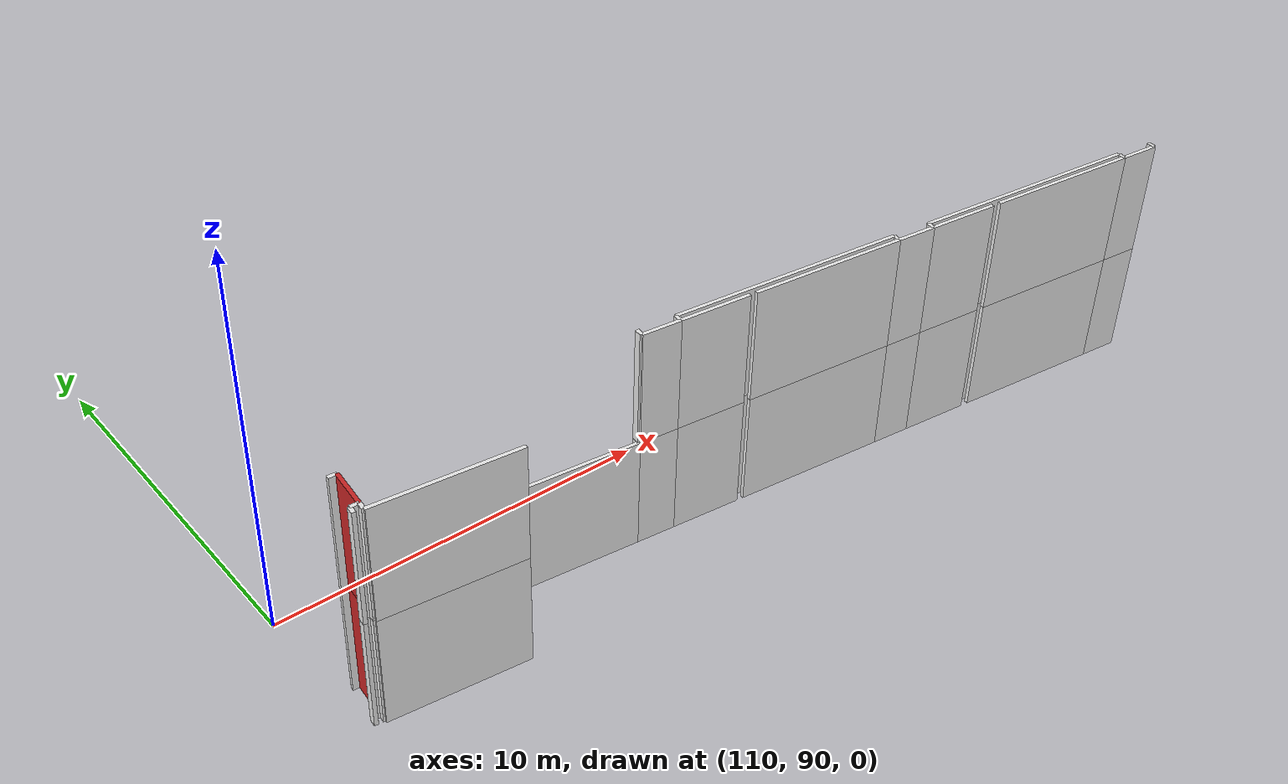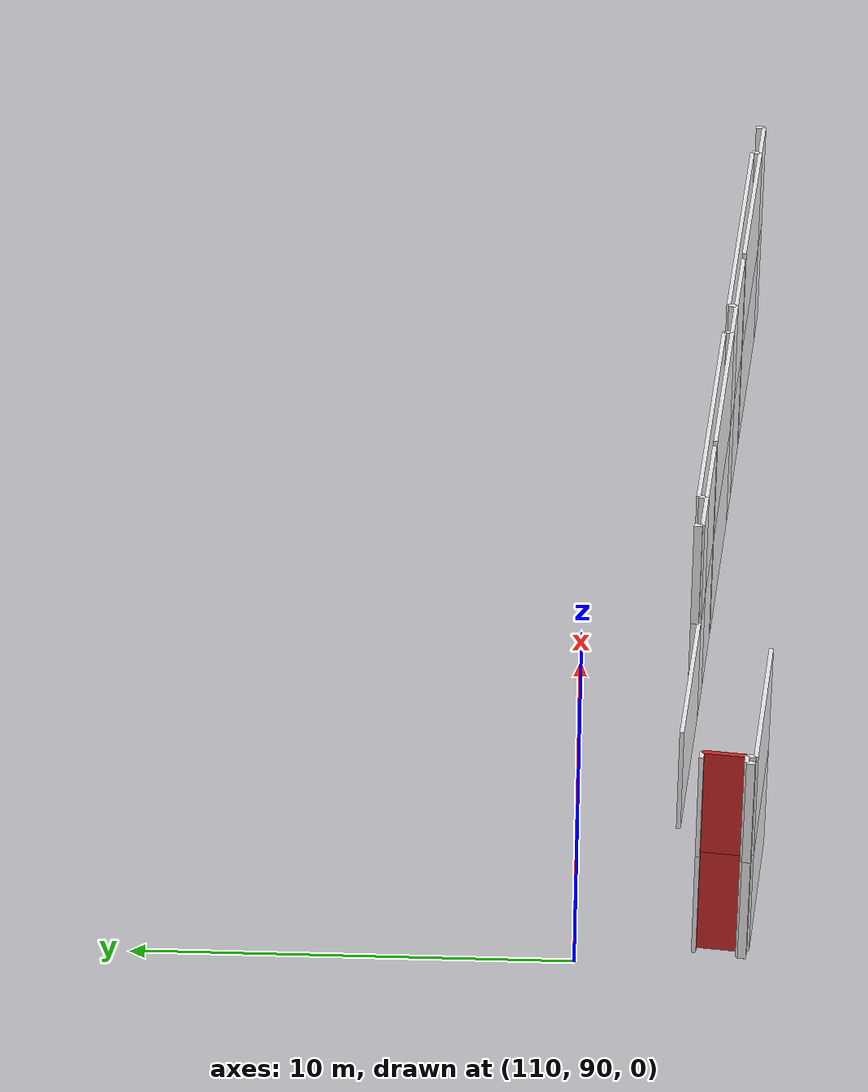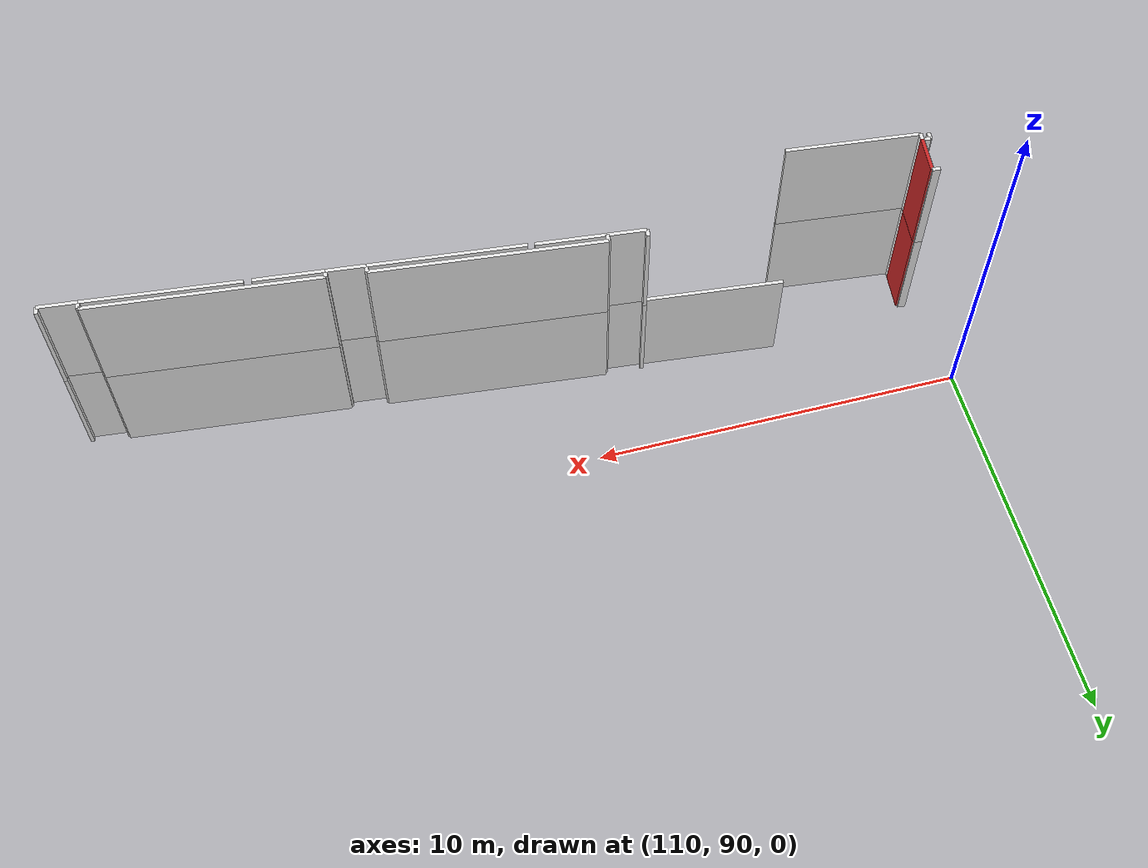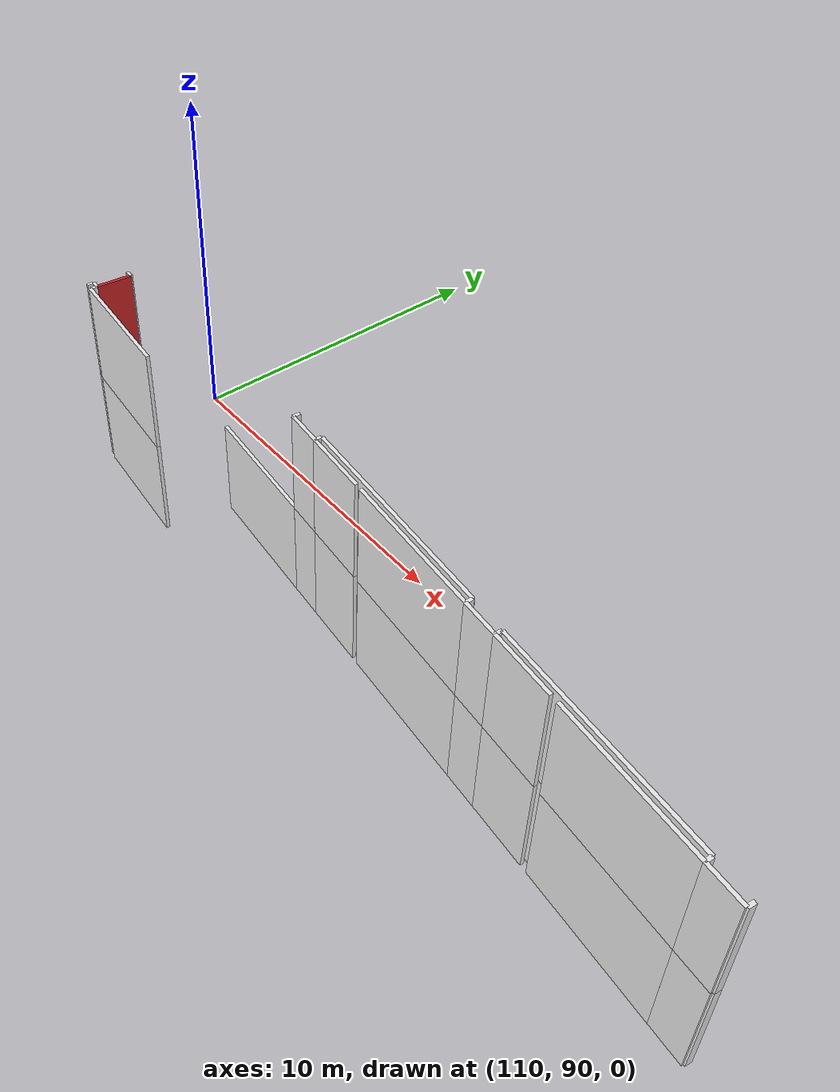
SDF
<sdf version="1.6">
 <world name="default">
  <model name="wall_110.6_86.8_1.5">
   <static>true</static>
   <pose>110.55999999999767 86.81499999994412 1.5 0 0 1.4701276746829237</pose>
   <link name="link">
    <visual name="visual">
     <geometry><box><size>0.9950376879485058 0.1 3</size></box></geometry>
     <material>
      <script><uri>file://media/materials/scripts/gazebo.material</uri><name>Gazebo/Red</name></script>
     </material>
    </visual>
    <collision name="collision"><geometry><box><size>0.9950376879485058 0.1 3</size></box></geometry></collision>
   </link>
  </model>
  <model name="wall_110.6_86.8_4.5">
   <static>true</static>
   <pose>110.55999999999767 86.81499999994412 4.5 0 0 1.4701276746829237</pose>
   <link name="link">
    <visual name="visual">
     <geometry><box><size>0.9950376879485058 0.1 3</size></box></geometry>
     <material>
      <script><uri>file://media/materials/scripts/gazebo.material</uri><name>Gazebo/Red</name></script>
     </material>
    </visual>
    <collision name="collision"><geometry><box><size>0.9950376879485058 0.1 3</size></box></geometry></collision>
   </link>
  </model>
  <model name="wall_132.6_85.8_1.5">
   <static>true</static>
   <pose>132.5800000000163 85.84000000008382 1.5 0 0 3.041924001006421</pose>
   <link name="link">
    <visual name="visual">
     <geometry><box><size>1.004987562121356 0.1 3</size></box></geometry>
     <material>
      <script><uri>file://media/materials/scripts/gazebo.material</uri><name>Gazebo/White</name></script>
     </material>
    </visual>
    <collision name="collision"><geometry><box><size>1.004987562121356 0.1 3</size></box></geometry></collision>
   </link>
  </model>
  <model name="wall_130.1_86.1_1.5">
   <static>true</static>
   <pose>130.0899999999965 86.09499999997206 1.5 0 0 3.03893967778239</pose>
   <link name="link">
    <visual name="visual">
     <geometry><box><size>4.001062358931114 0.1 3</size></box></geometry>
     <material>
      <script><uri>file://media/materials/scripts/gazebo.material</uri><name>Gazebo/White</name></script>
     </material>
    </visual>
    <collision name="collision"><geometry><box><size>4.001062358931114 0.1 3</size></box></geometry></collision>
   </link>
  </model>
  <model name="wall_112.3_85.9_1.5">
   <static>true</static>
   <pose>112.25500000000466 85.94999999995343 1.5 0 0 3.039961019922028</pose>
   <link name="link">
    <visual name="visual">
     <geometry><box><size>3.548309456643174 0.1 3</size></box></geometry>
     <material>
      <script><uri>file://media/materials/scripts/gazebo.material</uri><name>Gazebo/White</name></script>
     </material>
    </visual>
    <collision name="collision"><geometry><box><size>3.548309456643174 0.1 3</size></box></geometry></collision>
   </link>
  </model>
  <model name="wall_110.5_86.2_1.5">
   <static>true</static>
   <pose>110.5 86.2249999998603 1.5 0 0 1.4659193879370842</pose>
   <link name="link">
    <visual name="visual">
     <geometry><box><size>0.19104973169180559 0.1 3</size></box></geometry>
     <material>
      <script><uri>file://media/materials/scripts/gazebo.material</uri><name>Gazebo/White</name></script>
     </material>
    </visual>
    <collision name="collision"><geometry><box><size>0.19104973169180559 0.1 3</size></box></geometry></collision>
   </link>
  </model>
  <model name="wall_110.5_87.3_1.5">
   <static>true</static>
   <pose>110.50500000000466 87.32000000006519 1.5 0 0 -0.09495170644739931</pose>
   <link name="link">
    <visual name="visual">
     <geometry><box><size>0.21095023106197072 0.1 3</size></box></geometry>
     <material>
      <script><uri>file://media/materials/scripts/gazebo.material</uri><name>Gazebo/White</name></script>
     </material>
    </visual>
    <collision name="collision"><geometry><box><size>0.21095023106197072 0.1 3</size></box></geometry></collision>
   </link>
  </model>
  <model name="wall_110.4_86.3_1.5">
   <static>true</static>
   <pose>110.40499999999884 86.32999999984168 1.5 0 0 3.0466409471685547</pose>
   <link name="link">
    <visual name="visual">
     <geometry><box><size>0.21095023111991618 0.1 3</size></box></geometry>
     <material>
      <script><uri>file://media/materials/scripts/gazebo.material</uri><name>Gazebo/White</name></script>
     </material>
    </visual>
    <collision name="collision"><geometry><box><size>0.21095023111991618 0.1 3</size></box></geometry></collision>
   </link>
  </model>
  <model name="wall_110.3_86.2_1.5">
   <static>true</static>
   <pose>110.29000000000815 86.24499999987893 1.5 0 0 -1.6756732653497102</pose>
   <link name="link">
    <visual name="visual">
     <geometry><box><size>0.19104973168571213 0.1 3</size></box></geometry>
     <material>
      <script><uri>file://media/materials/scripts/gazebo.material</uri><name>Gazebo/White</name></script>
     </material>
    </visual>
    <collision name="collision"><geometry><box><size>0.19104973168571213 0.1 3</size></box></geometry></collision>
   </link>
  </model>
  <model name="wall_127.0_86.4_1.5">
   <static>true</static>
   <pose>127.00500000000466 86.40999999991618 1.5 0 0 3.041370903719256</pose>
   <link name="link">
    <visual name="visual">
     <geometry><box><size>1.7990275151296922 0.1 3</size></box></geometry>
     <material>
      <script><uri>file://media/materials/scripts/gazebo.material</uri><name>Gazebo/White</name></script>
     </material>
    </visual>
    <collision name="collision"><geometry><box><size>1.7990275151296922 0.1 3</size></box></geometry></collision>
   </link>
  </model>
  <model name="wall_125.6_86.6_1.5">
   <static>true</static>
   <pose>125.60999999998603 86.55000000004657 1.5 0 0 3.041924001006421</pose>
   <link name="link">
    <visual name="visual">
     <geometry><box><size>1.004987562121356 0.1 3</size></box></geometry>
     <material>
      <script><uri>file://media/materials/scripts/gazebo.material</uri><name>Gazebo/White</name></script>
     </material>
    </visual>
    <collision name="collision"><geometry><box><size>1.004987562121356 0.1 3</size></box></geometry></collision>
   </link>
  </model>
  <model name="wall_123.1_86.8_1.5">
   <static>true</static>
   <pose>123.11499999999069 86.80000000004657 1.5 0 0 3.0416758621687854</pose>
   <link name="link">
    <visual name="visual">
     <geometry><box><size>4.009999999981443 0.1 3</size></box></geometry>
     <material>
      <script><uri>file://media/materials/scripts/gazebo.material</uri><name>Gazebo/White</name></script>
     </material>
    </visual>
    <collision name="collision"><geometry><box><size>4.009999999981443 0.1 3</size></box></geometry></collision>
   </link>
  </model>
  <model name="wall_120.0_87.1_1.5">
   <static>true</static>
   <pose>120.0450000000128 87.11000000010245 1.5 0 0 3.042471046904084</pose>
   <link name="link">
    <visual name="visual">
     <geometry><box><size>1.8189282558836457 0.1 3</size></box></geometry>
     <material>
      <script><uri>file://media/materials/scripts/gazebo.material</uri><name>Gazebo/White</name></script>
     </material>
    </visual>
    <collision name="collision"><geometry><box><size>1.8189282558836457 0.1 3</size></box></geometry></collision>
   </link>
  </model>
  <model name="wall_118.6_87.2_1.5">
   <static>true</static>
   <pose>118.64000000001397 87.25 1.5 0 0 3.0419240014674718</pose>
   <link name="link">
    <visual name="visual">
     <geometry><box><size>1.004987562075021 0.1 3</size></box></geometry>
     <material>
      <script><uri>file://media/materials/scripts/gazebo.material</uri><name>Gazebo/White</name></script>
     </material>
    </visual>
    <collision name="collision"><geometry><box><size>1.004987562075021 0.1 3</size></box></geometry></collision>
   </link>
  </model>
  <model name="wall_116.3_87.5_1.5">
   <static>true</static>
   <pose>116.27499999999418 87.48999999999069 1.5 0 0 3.040066253673752</pose>
   <link name="link">
    <visual name="visual">
     <geometry><box><size>3.7493066026352446 0.1 3</size></box></geometry>
     <material>
      <script><uri>file://media/materials/scripts/gazebo.material</uri><name>Gazebo/White</name></script>
     </material>
    </visual>
    <collision name="collision"><geometry><box><size>3.7493066026352446 0.1 3</size></box></geometry></collision>
   </link>
  </model>
  <model name="wall_119.1_87.3_1.5">
   <static>true</static>
   <pose>119.14500000001863 87.29500000015832 1.5 0 0 1.518213265119637</pose>
   <link name="link">
    <visual name="visual">
     <geometry><box><size>0.19026297584909185 0.1 3</size></box></geometry>
     <material>
      <script><uri>file://media/materials/scripts/gazebo.material</uri><name>Gazebo/White</name></script>
     </material>
    </visual>
    <collision name="collision"><geometry><box><size>0.19026297584909185 0.1 3</size></box></geometry></collision>
   </link>
  </model>
  <model name="wall_122.1_87.1_1.5">
   <static>true</static>
   <pose>122.14000000001397 87.09000000008382 1.5 0 0 -0.09999977832260272</pose>
   <link name="link">
    <visual name="visual">
     <geometry><box><size>6.010024958341603 0.1 3</size></box></geometry>
     <material>
      <script><uri>file://media/materials/scripts/gazebo.material</uri><name>Gazebo/White</name></script>
     </material>
    </visual>
    <collision name="collision"><geometry><box><size>6.010024958341603 0.1 3</size></box></geometry></collision>
   </link>
  </model>
  <model name="wall_125.1_86.7_1.5">
   <static>true</static>
   <pose>125.11999999999534 86.69500000006519 1.5 0 0 -1.675673265652709</pose>
   <link name="link">
    <visual name="visual">
     <geometry><box><size>0.19104973169180559 0.1 3</size></box></geometry>
     <material>
      <script><uri>file://media/materials/scripts/gazebo.material</uri><name>Gazebo/White</name></script>
     </material>
    </visual>
    <collision name="collision"><geometry><box><size>0.19104973169180559 0.1 3</size></box></geometry></collision>
   </link>
  </model>
  <model name="wall_126.1_86.6_1.5">
   <static>true</static>
   <pose>126.11999999999534 86.59000000008382 1.5 0 0 1.460139105621001</pose>
   <link name="link">
    <visual name="visual">
     <geometry><box><size>0.18110770293141804 0.1 3</size></box></geometry>
     <material>
      <script><uri>file://media/materials/scripts/gazebo.material</uri><name>Gazebo/White</name></script>
     </material>
    </visual>
    <collision name="collision"><geometry><box><size>0.18110770293141804 0.1 3</size></box></geometry></collision>
   </link>
  </model>
  <model name="wall_129.1_86.4_1.5">
   <static>true</static>
   <pose>129.1149999999907 86.38000000012107 1.5 0 0 -0.10016616490383481</pose>
   <link name="link">
    <visual name="visual">
     <geometry><box><size>6.00007499951277 0.1 3</size></box></geometry>
     <material>
      <script><uri>file://media/materials/scripts/gazebo.material</uri><name>Gazebo/White</name></script>
     </material>
    </visual>
    <collision name="collision"><geometry><box><size>6.00007499951277 0.1 3</size></box></geometry></collision>
   </link>
  </model>
  <model name="wall_132.1_86.0_1.5">
   <static>true</static>
   <pose>132.0899999999965 85.98500000010245 1.5 0 0 -1.6756732653497102</pose>
   <link name="link">
    <visual name="visual">
     <geometry><box><size>0.19104973168571213 0.1 3</size></box></geometry>
     <material>
      <script><uri>file://media/materials/scripts/gazebo.material</uri><name>Gazebo/White</name></script>
     </material>
    </visual>
    <collision name="collision"><geometry><box><size>0.19104973168571213 0.1 3</size></box></geometry></collision>
   </link>
  </model>
  <model name="wall_133.1_85.9_1.5">
   <static>true</static>
   <pose>133.0899999999965 85.88500000000931 1.5 0 0 1.4659193882400832</pose>
   <link name="link">
    <visual name="visual">
     <geometry><box><size>0.19104973168571213 0.1 3</size></box></geometry>
     <material>
      <script><uri>file://media/materials/scripts/gazebo.material</uri><name>Gazebo/White</name></script>
     </material>
    </visual>
    <collision name="collision"><geometry><box><size>0.19104973168571213 0.1 3</size></box></geometry></collision>
   </link>
  </model>
  <model name="wall_118.1_87.4_1.5">
   <static>true</static>
   <pose>118.14999999999418 87.39500000001863 1.5 0 0 -1.6756732650945534</pose>
   <link name="link">
    <visual name="visual">
     <geometry><box><size>0.19104973214881482 0.1 3</size></box></geometry>
     <material>
      <script><uri>file://media/materials/scripts/gazebo.material</uri><name>Gazebo/White</name></script>
     </material>
    </visual>
    <collision name="collision"><geometry><box><size>0.19104973214881482 0.1 3</size></box></geometry></collision>
   </link>
  </model>
  <model name="wall_132.6_85.8_4.5">
   <static>true</static>
   <pose>132.5800000000163 85.84000000008382 4.5 0 0 3.041924001006421</pose>
   <link name="link">
    <visual name="visual">
     <geometry><box><size>1.004987562121356 0.1 3</size></box></geometry>
     <material>
      <script><uri>file://media/materials/scripts/gazebo.material</uri><name>Gazebo/White</name></script>
     </material>
    </visual>
    <collision name="collision"><geometry><box><size>1.004987562121356 0.1 3</size></box></geometry></collision>
   </link>
  </model>
  <model name="wall_130.1_86.1_4.5">
   <static>true</static>
   <pose>130.0899999999965 86.09499999997206 4.5 0 0 3.03893967778239</pose>
   <link name="link">
    <visual name="visual">
     <geometry><box><size>4.001062358931114 0.1 3</size></box></geometry>
     <material>
      <script><uri>file://media/materials/scripts/gazebo.material</uri><name>Gazebo/White</name></script>
     </material>
    </visual>
    <collision name="collision"><geometry><box><size>4.001062358931114 0.1 3</size></box></geometry></collision>
   </link>
  </model>
  <model name="wall_112.3_85.9_4.5">
   <static>true</static>
   <pose>112.25500000000466 85.94999999995343 4.5 0 0 3.039961019922028</pose>
   <link name="link">
    <visual name="visual">
     <geometry><box><size>3.548309456643174 0.1 3</size></box></geometry>
     <material>
      <script><uri>file://media/materials/scripts/gazebo.material</uri><name>Gazebo/White</name></script>
     </material>
    </visual>
    <collision name="collision"><geometry><box><size>3.548309456643174 0.1 3</size></box></geometry></collision>
   </link>
  </model>
  <model name="wall_110.5_86.2_4.5">
   <static>true</static>
   <pose>110.5 86.2249999998603 4.5 0 0 1.4659193879370842</pose>
   <link name="link">
    <visual name="visual">
     <geometry><box><size>0.19104973169180559 0.1 3</size></box></geometry>
     <material>
      <script><uri>file://media/materials/scripts/gazebo.material</uri><name>Gazebo/White</name></script>
     </material>
    </visual>
    <collision name="collision"><geometry><box><size>0.19104973169180559 0.1 3</size></box></geometry></collision>
   </link>
  </model>
  <model name="wall_110.5_87.3_4.5">
   <static>true</static>
   <pose>110.50500000000466 87.32000000006519 4.5 0 0 -0.09495170644739931</pose>
   <link name="link">
    <visual name="visual">
     <geometry><box><size>0.21095023106197072 0.1 3</size></box></geometry>
     <material>
      <script><uri>file://media/materials/scripts/gazebo.material</uri><name>Gazebo/White</name></script>
     </material>
    </visual>
    <collision name="collision"><geometry><box><size>0.21095023106197072 0.1 3</size></box></geometry></collision>
   </link>
  </model>
  <model name="wall_110.4_86.3_4.5">
   <static>true</static>
   <pose>110.40499999999884 86.32999999984168 4.5 0 0 3.0466409471685547</pose>
   <link name="link">
    <visual name="visual">
     <geometry><box><size>0.21095023111991618 0.1 3</size></box></geometry>
     <material>
      <script><uri>file://media/materials/scripts/gazebo.material</uri><name>Gazebo/White</name></script>
     </material>
    </visual>
    <collision name="collision"><geometry><box><size>0.21095023111991618 0.1 3</size></box></geometry></collision>
   </link>
  </model>
  <model name="wall_110.3_86.2_4.5">
   <static>true</static>
   <pose>110.29000000000815 86.24499999987893 4.5 0 0 -1.6756732653497102</pose>
   <link name="link">
    <visual name="visual">
     <geometry><box><size>0.19104973168571213 0.1 3</size></box></geometry>
     <material>
      <script><uri>file://media/materials/scripts/gazebo.material</uri><name>Gazebo/White</name></script>
     </material>
    </visual>
    <collision name="collision"><geometry><box><size>0.19104973168571213 0.1 3</size></box></geometry></collision>
   </link>
  </model>
  <model name="wall_127.0_86.4_4.5">
   <static>true</static>
   <pose>127.00500000000466 86.40999999991618 4.5 0 0 3.041370903719256</pose>
   <link name="link">
    <visual name="visual">
     <geometry><box><size>1.7990275151296922 0.1 3</size></box></geometry>
     <material>
      <script><uri>file://media/materials/scripts/gazebo.material</uri><name>Gazebo/White</name></script>
     </material>
    </visual>
    <collision name="collision"><geometry><box><size>1.7990275151296922 0.1 3</size></box></geometry></collision>
   </link>
  </model>
  <model name="wall_125.6_86.6_4.5">
   <static>true</static>
   <pose>125.60999999998603 86.55000000004657 4.5 0 0 3.041924001006421</pose>
   <link name="link">
    <visual name="visual">
     <geometry><box><size>1.004987562121356 0.1 3</size></box></geometry>
     <material>
      <script><uri>file://media/materials/scripts/gazebo.material</uri><name>Gazebo/White</name></script>
     </material>
    </visual>
    <collision name="collision"><geometry><box><size>1.004987562121356 0.1 3</size></box></geometry></collision>
   </link>
  </model>
  <model name="wall_123.1_86.8_4.5">
   <static>true</static>
   <pose>123.11499999999069 86.80000000004657 4.5 0 0 3.0416758621687854</pose>
   <link name="link">
    <visual name="visual">
     <geometry><box><size>4.009999999981443 0.1 3</size></box></geometry>
     <material>
      <script><uri>file://media/materials/scripts/gazebo.material</uri><name>Gazebo/White</name></script>
     </material>
    </visual>
    <collision name="collision"><geometry><box><size>4.009999999981443 0.1 3</size></box></geometry></collision>
   </link>
  </model>
  <model name="wall_120.0_87.1_4.5">
   <static>true</static>
   <pose>120.0450000000128 87.11000000010245 4.5 0 0 3.042471046904084</pose>
   <link name="link">
    <visual name="visual">
     <geometry><box><size>1.8189282558836457 0.1 3</size></box></geometry>
     <material>
      <script><uri>file://media/materials/scripts/gazebo.material</uri><name>Gazebo/White</name></script>
     </material>
    </visual>
    <collision name="collision"><geometry><box><size>1.8189282558836457 0.1 3</size></box></geometry></collision>
   </link>
  </model>
  <model name="wall_118.6_87.2_4.5">
   <static>true</static>
   <pose>118.64000000001397 87.25 4.5 0 0 3.0419240014674718</pose>
   <link name="link">
    <visual name="visual">
     <geometry><box><size>1.004987562075021 0.1 3</size></box></geometry>
     <material>
      <script><uri>file://media/materials/scripts/gazebo.material</uri><name>Gazebo/White</name></script>
     </material>
    </visual>
    <collision name="collision"><geometry><box><size>1.004987562075021 0.1 3</size></box></geometry></collision>
   </link>
  </model>
  <model name="wall_119.1_87.3_4.5">
   <static>true</static>
   <pose>119.14500000001863 87.29500000015832 4.5 0 0 1.518213265119637</pose>
   <link name="link">
    <visual name="visual">
     <geometry><box><size>0.19026297584909185 0.1 3</size></box></geometry>
     <material>
      <script><uri>file://media/materials/scripts/gazebo.material</uri><name>Gazebo/White</name></script>
     </material>
    </visual>
    <collision name="collision"><geometry><box><size>0.19026297584909185 0.1 3</size></box></geometry></collision>
   </link>
  </model>
  <model name="wall_122.1_87.1_4.5">
   <static>true</static>
   <pose>122.14000000001397 87.09000000008382 4.5 0 0 -0.09999977832260272</pose>
   <link name="link">
    <visual name="visual">
     <geometry><box><size>6.010024958341603 0.1 3</size></box></geometry>
     <material>
      <script><uri>file://media/materials/scripts/gazebo.material</uri><name>Gazebo/White</name></script>
     </material>
    </visual>
    <collision name="collision"><geometry><box><size>6.010024958341603 0.1 3</size></box></geometry></collision>
   </link>
  </model>
  <model name="wall_125.1_86.7_4.5">
   <static>true</static>
   <pose>125.11999999999534 86.69500000006519 4.5 0 0 -1.675673265652709</pose>
   <link name="link">
    <visual name="visual">
     <geometry><box><size>0.19104973169180559 0.1 3</size></box></geometry>
     <material>
      <script><uri>file://media/materials/scripts/gazebo.material</uri><name>Gazebo/White</name></script>
     </material>
    </visual>
    <collision name="collision"><geometry><box><size>0.19104973169180559 0.1 3</size></box></geometry></collision>
   </link>
  </model>
  <model name="wall_126.1_86.6_4.5">
   <static>true</static>
   <pose>126.11999999999534 86.59000000008382 4.5 0 0 1.460139105621001</pose>
   <link name="link">
    <visual name="visual">
     <geometry><box><size>0.18110770293141804 0.1 3</size></box></geometry>
     <material>
      <script><uri>file://media/materials/scripts/gazebo.material</uri><name>Gazebo/White</name></script>
     </material>
    </visual>
    <collision name="collision"><geometry><box><size>0.18110770293141804 0.1 3</size></box></geometry></collision>
   </link>
  </model>
  <model name="wall_129.1_86.4_4.5">
   <static>true</static>
   <pose>129.1149999999907 86.38000000012107 4.5 0 0 -0.10016616490383481</pose>
   <link name="link">
    <visual name="visual">
     <geometry><box><size>6.00007499951277 0.1 3</size></box></geometry>
     <material>
      <script><uri>file://media/materials/scripts/gazebo.material</uri><name>Gazebo/White</name></script>
     </material>
    </visual>
    <collision name="collision"><geometry><box><size>6.00007499951277 0.1 3</size></box></geometry></collision>
   </link>
  </model>
  <model name="wall_132.1_86.0_4.5">
   <static>true</static>
   <pose>132.0899999999965 85.98500000010245 4.5 0 0 -1.6756732653497102</pose>
   <link name="link">
    <visual name="visual">
     <geometry><box><size>0.19104973168571213 0.1 3</size></box></geometry>
     <material>
      <script><uri>file://media/materials/scripts/gazebo.material</uri><name>Gazebo/White</name></script>
     </material>
    </visual>
    <collision name="collision"><geometry><box><size>0.19104973168571213 0.1 3</size></box></geometry></collision>
   </link>
  </model>
  <model name="wall_133.1_85.9_4.5">
   <static>true</static>
   <pose>133.0899999999965 85.88500000000931 4.5 0 0 1.4659193882400832</pose>
   <link name="link">
    <visual name="visual">
     <geometry><box><size>0.19104973168571213 0.1 3</size></box></geometry>
     <material>
      <script><uri>file://media/materials/scripts/gazebo.material</uri><name>Gazebo/White</name></script>
     </material>
    </visual>
    <collision name="collision"><geometry><box><size>0.19104973168571213 0.1 3</size></box></geometry></collision>
   </link>
  </model>
  <model name="wall_118.1_87.4_4.5">
   <static>true</static>
   <pose>118.14999999999418 87.39500000001863 4.5 0 0 -1.6756732650945534</pose>
   <link name="link">
    <visual name="visual">
     <geometry><box><size>0.19104973214881482 0.1 3</size></box></geometry>
     <material>
      <script><uri>file://media/materials/scripts/gazebo.material</uri><name>Gazebo/White</name></script>
     </material>
    </visual>
    <collision name="collision"><geometry><box><size>0.19104973214881482 0.1 3</size></box></geometry></collision>
   </link>
  </model>
 </world>
</sdf>
